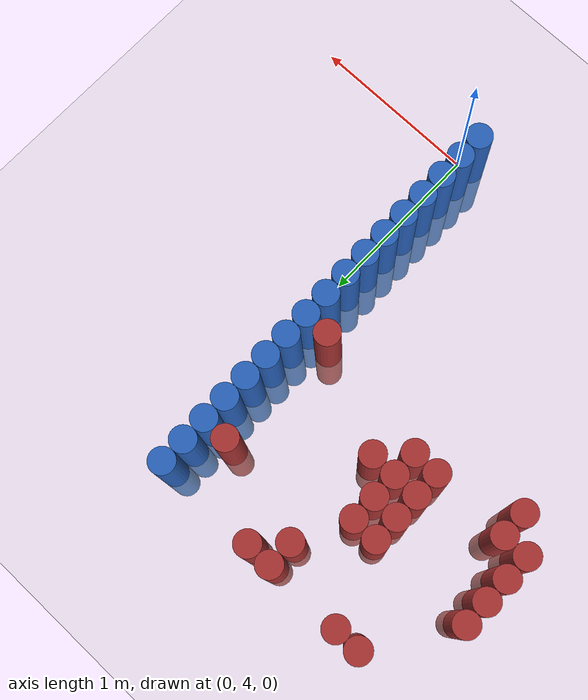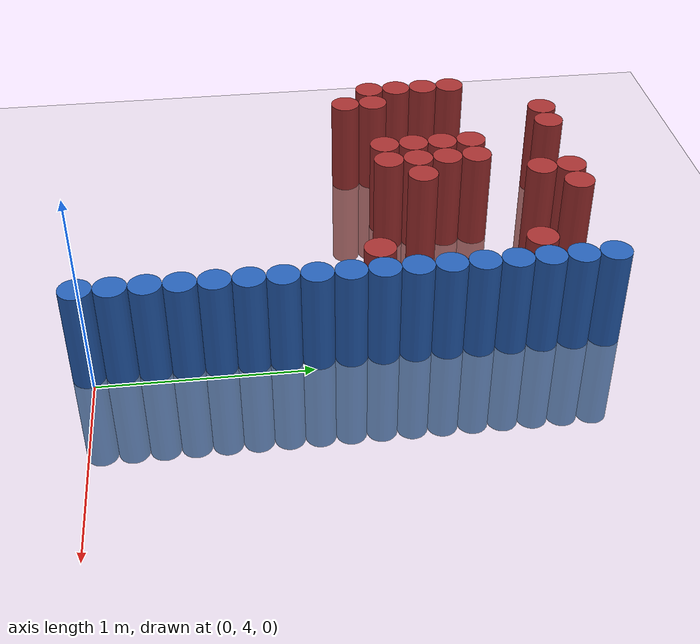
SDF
<sdf version="1.6">
 <world name="default">
  <model name="ground_plane">
   <static>1</static>
   <link name="link">
    <collision name="collision">
     <geometry><plane><normal>0 0 1</normal><size>100 100</size></plane></geometry>
     <surface><friction><ode><mu>100</mu><mu2>50</mu2></ode></friction></surface>
    </collision>
    <visual name="visual">
     <cast_shadows>0</cast_shadows>
     <geometry><plane><normal>0 0 1</normal><size>100 100</size></plane></geometry>
     <material>
      <script><uri>file://media/materials/scripts/gazebo.material</uri><name>Gazebo/Grey</name></script>
     </material>
    </visual>
   </link>
  </model>
  <model name="unit_cylinder_80">
   <static>1</static>
   <pose>-0.075000 3.975000 0.000000 0.000000 0.000000 0.000000</pose>
   <link name="link">
    <inertial>
     <mass>1</mass>
     <inertia><ixx>0.145833</ixx><ixy>0</ixy><ixz>0</ixz><iyy>0.145833</iyy><iyz>0</iyz><izz>0.125</izz></inertia>
    </inertial>
    <collision name="collision">
     <geometry><cylinder><radius>0.075000</radius><length>1</length></cylinder></geometry>
    </collision>
    <visual name="visual">
     <geometry><cylinder><radius>0.075000</radius><length>1</length></cylinder></geometry>
     <material>
      <ambient>0.152000 0.379000 0.720000 1</ambient>
      <diffuse>0.152000 0.379000 0.720000 1</diffuse>
     </material>
     <material>
      <script><name>Gazebo/Grey</name><uri>file://media/materials/scripts/gazebo.material</uri></script>
     </material>
    </visual>
    <sensor name="sensor_contact" type="contact"><contact><collision>collision</collision></contact></sensor>
   </link>
   <plugin filename="gz-sim-touchplugin-system" name="gz::sim::systems::TouchPlugin">
    <target>robot</target>
    <namespace>robot</namespace>
    <time>0.001</time>
    <enabled>true</enabled>
   </plugin>
  </model>
  <model name="unit_cylinder_82">
   <static>1</static>
   <pose>-0.075000 4.125000 0.000000 0.000000 0.000000 0.000000</pose>
   <link name="link">
    <inertial>
     <mass>1</mass>
     <inertia><ixx>0.145833</ixx><ixy>0</ixy><ixz>0</ixz><iyy>0.145833</iyy><iyz>0</iyz><izz>0.125</izz></inertia>
    </inertial>
    <collision name="collision">
     <geometry><cylinder><radius>0.075000</radius><length>1</length></cylinder></geometry>
    </collision>
    <visual name="visual">
     <geometry><cylinder><radius>0.075000</radius><length>1</length></cylinder></geometry>
     <material>
      <ambient>0.152000 0.379000 0.720000 1</ambient>
      <diffuse>0.152000 0.379000 0.720000 1</diffuse>
     </material>
     <material>
      <script><name>Gazebo/Grey</name><uri>file://media/materials/scripts/gazebo.material</uri></script>
     </material>
    </visual>
    <sensor name="sensor_contact" type="contact"><contact><collision>collision</collision></contact></sensor>
   </link>
   <plugin filename="gz-sim-touchplugin-system" name="gz::sim::systems::TouchPlugin">
    <target>robot</target>
    <namespace>robot</namespace>
    <time>0.001</time>
    <enabled>true</enabled>
   </plugin>
  </model>
  <model name="unit_cylinder_84">
   <static>1</static>
   <pose>-0.075000 4.275000 0.000000 0.000000 0.000000 0.000000</pose>
   <link name="link">
    <inertial>
     <mass>1</mass>
     <inertia><ixx>0.145833</ixx><ixy>0</ixy><ixz>0</ixz><iyy>0.145833</iyy><iyz>0</iyz><izz>0.125</izz></inertia>
    </inertial>
    <collision name="collision">
     <geometry><cylinder><radius>0.075000</radius><length>1</length></cylinder></geometry>
    </collision>
    <visual name="visual">
     <geometry><cylinder><radius>0.075000</radius><length>1</length></cylinder></geometry>
     <material>
      <ambient>0.152000 0.379000 0.720000 1</ambient>
      <diffuse>0.152000 0.379000 0.720000 1</diffuse>
     </material>
     <material>
      <script><name>Gazebo/Grey</name><uri>file://media/materials/scripts/gazebo.material</uri></script>
     </material>
    </visual>
    <sensor name="sensor_contact" type="contact"><contact><collision>collision</collision></contact></sensor>
   </link>
   <plugin filename="gz-sim-touchplugin-system" name="gz::sim::systems::TouchPlugin">
    <target>robot</target>
    <namespace>robot</namespace>
    <time>0.001</time>
    <enabled>true</enabled>
   </plugin>
  </model>
  <model name="unit_cylinder_86">
   <static>1</static>
   <pose>-0.075000 4.425000 0.000000 0.000000 0.000000 0.000000</pose>
   <link name="link">
    <inertial>
     <mass>1</mass>
     <inertia><ixx>0.145833</ixx><ixy>0</ixy><ixz>0</ixz><iyy>0.145833</iyy><iyz>0</iyz><izz>0.125</izz></inertia>
    </inertial>
    <collision name="collision">
     <geometry><cylinder><radius>0.075000</radius><length>1</length></cylinder></geometry>
    </collision>
    <visual name="visual">
     <geometry><cylinder><radius>0.075000</radius><length>1</length></cylinder></geometry>
     <material>
      <ambient>0.152000 0.379000 0.720000 1</ambient>
      <diffuse>0.152000 0.379000 0.720000 1</diffuse>
     </material>
     <material>
      <script><name>Gazebo/Grey</name><uri>file://media/materials/scripts/gazebo.material</uri></script>
     </material>
    </visual>
    <sensor name="sensor_contact" type="contact"><contact><collision>collision</collision></contact></sensor>
   </link>
   <plugin filename="gz-sim-touchplugin-system" name="gz::sim::systems::TouchPlugin">
    <target>robot</target>
    <namespace>robot</namespace>
    <time>0.001</time>
    <enabled>true</enabled>
   </plugin>
  </model>
  <model name="unit_cylinder_88">
   <static>1</static>
   <pose>-0.075000 4.575000 0.000000 0.000000 0.000000 0.000000</pose>
   <link name="link">
    <inertial>
     <mass>1</mass>
     <inertia><ixx>0.145833</ixx><ixy>0</ixy><ixz>0</ixz><iyy>0.145833</iyy><iyz>0</iyz><izz>0.125</izz></inertia>
    </inertial>
    <collision name="collision">
     <geometry><cylinder><radius>0.075000</radius><length>1</length></cylinder></geometry>
    </collision>
    <visual name="visual">
     <geometry><cylinder><radius>0.075000</radius><length>1</length></cylinder></geometry>
     <material>
      <ambient>0.152000 0.379000 0.720000 1</ambient>
      <diffuse>0.152000 0.379000 0.720000 1</diffuse>
     </material>
     <material>
      <script><name>Gazebo/Grey</name><uri>file://media/materials/scripts/gazebo.material</uri></script>
     </material>
    </visual>
    <sensor name="sensor_contact" type="contact"><contact><collision>collision</collision></contact></sensor>
   </link>
   <plugin filename="gz-sim-touchplugin-system" name="gz::sim::systems::TouchPlugin">
    <target>robot</target>
    <namespace>robot</namespace>
    <time>0.001</time>
    <enabled>true</enabled>
   </plugin>
  </model>
  <model name="unit_cylinder_90">
   <static>1</static>
   <pose>-0.075000 4.725000 0.000000 0.000000 0.000000 0.000000</pose>
   <link name="link">
    <inertial>
     <mass>1</mass>
     <inertia><ixx>0.145833</ixx><ixy>0</ixy><ixz>0</ixz><iyy>0.145833</iyy><iyz>0</iyz><izz>0.125</izz></inertia>
    </inertial>
    <collision name="collision">
     <geometry><cylinder><radius>0.075000</radius><length>1</length></cylinder></geometry>
    </collision>
    <visual name="visual">
     <geometry><cylinder><radius>0.075000</radius><length>1</length></cylinder></geometry>
     <material>
      <ambient>0.152000 0.379000 0.720000 1</ambient>
      <diffuse>0.152000 0.379000 0.720000 1</diffuse>
     </material>
     <material>
      <script><name>Gazebo/Grey</name><uri>file://media/materials/scripts/gazebo.material</uri></script>
     </material>
    </visual>
    <sensor name="sensor_contact" type="contact"><contact><collision>collision</collision></contact></sensor>
   </link>
   <plugin filename="gz-sim-touchplugin-system" name="gz::sim::systems::TouchPlugin">
    <target>robot</target>
    <namespace>robot</namespace>
    <time>0.001</time>
    <enabled>true</enabled>
   </plugin>
  </model>
  <model name="unit_cylinder_92">
   <static>1</static>
   <pose>-0.075000 4.875000 0.000000 0.000000 0.000000 0.000000</pose>
   <link name="link">
    <inertial>
     <mass>1</mass>
     <inertia><ixx>0.145833</ixx><ixy>0</ixy><ixz>0</ixz><iyy>0.145833</iyy><iyz>0</iyz><izz>0.125</izz></inertia>
    </inertial>
    <collision name="collision">
     <geometry><cylinder><radius>0.075000</radius><length>1</length></cylinder></geometry>
    </collision>
    <visual name="visual">
     <geometry><cylinder><radius>0.075000</radius><length>1</length></cylinder></geometry>
     <material>
      <ambient>0.152000 0.379000 0.720000 1</ambient>
      <diffuse>0.152000 0.379000 0.720000 1</diffuse>
     </material>
     <material>
      <script><name>Gazebo/Grey</name><uri>file://media/materials/scripts/gazebo.material</uri></script>
     </material>
    </visual>
    <sensor name="sensor_contact" type="contact"><contact><collision>collision</collision></contact></sensor>
   </link>
   <plugin filename="gz-sim-touchplugin-system" name="gz::sim::systems::TouchPlugin">
    <target>robot</target>
    <namespace>robot</namespace>
    <time>0.001</time>
    <enabled>true</enabled>
   </plugin>
  </model>
  <model name="unit_cylinder_94">
   <static>1</static>
   <pose>-0.075000 5.025000 0.000000 0.000000 0.000000 0.000000</pose>
   <link name="link">
    <inertial>
     <mass>1</mass>
     <inertia><ixx>0.145833</ixx><ixy>0</ixy><ixz>0</ixz><iyy>0.145833</iyy><iyz>0</iyz><izz>0.125</izz></inertia>
    </inertial>
    <collision name="collision">
     <geometry><cylinder><radius>0.075000</radius><length>1</length></cylinder></geometry>
    </collision>
    <visual name="visual">
     <geometry><cylinder><radius>0.075000</radius><length>1</length></cylinder></geometry>
     <material>
      <ambient>0.152000 0.379000 0.720000 1</ambient>
      <diffuse>0.152000 0.379000 0.720000 1</diffuse>
     </material>
     <material>
      <script><name>Gazebo/Grey</name><uri>file://media/materials/scripts/gazebo.material</uri></script>
     </material>
    </visual>
    <sensor name="sensor_contact" type="contact"><contact><collision>collision</collision></contact></sensor>
   </link>
   <plugin filename="gz-sim-touchplugin-system" name="gz::sim::systems::TouchPlugin">
    <target>robot</target>
    <namespace>robot</namespace>
    <time>0.001</time>
    <enabled>true</enabled>
   </plugin>
  </model>
  <model name="unit_cylinder_200">
   <static>1</static>
   <pose>-1.725000 5.475000 0.000000 0.000000 0.000000 0.000000</pose>
   <link name="link">
    <inertial>
     <mass>1</mass>
     <inertia><ixx>0.145833</ixx><ixy>0</ixy><ixz>0</ixz><iyy>0.145833</iyy><iyz>0</iyz><izz>0.125</izz></inertia>
    </inertial>
    <collision name="collision">
     <geometry><cylinder><radius>0.075000</radius><length>1</length></cylinder></geometry>
    </collision>
    <visual name="visual">
     <geometry><cylinder><radius>0.075000</radius><length>1</length></cylinder></geometry>
     <material>
      <ambient>0.648000 0.192000 0.192000 1</ambient>
      <diffuse>0.648000 0.192000 0.192000 1</diffuse>
     </material>
     <material>
      <script><name>Gazebo/Grey</name><uri>file://media/materials/scripts/gazebo.material</uri></script>
     </material>
    </visual>
    <sensor name="sensor_contact" type="contact"><contact><collision>collision</collision></contact></sensor>
   </link>
   <plugin filename="gz-sim-touchplugin-system" name="gz::sim::systems::TouchPlugin">
    <target>robot</target>
    <namespace>robot</namespace>
    <time>0.001</time>
    <enabled>true</enabled>
   </plugin>
  </model>
  <model name="unit_cylinder_201">
   <static>1</static>
   <pose>-1.725000 5.625000 0.000000 0.000000 0.000000 0.000000</pose>
   <link name="link">
    <inertial>
     <mass>1</mass>
     <inertia><ixx>0.145833</ixx><ixy>0</ixy><ixz>0</ixz><iyy>0.145833</iyy><iyz>0</iyz><izz>0.125</izz></inertia>
    </inertial>
    <collision name="collision">
     <geometry><cylinder><radius>0.075000</radius><length>1</length></cylinder></geometry>
    </collision>
    <visual name="visual">
     <geometry><cylinder><radius>0.075000</radius><length>1</length></cylinder></geometry>
     <material>
      <ambient>0.648000 0.192000 0.192000 1</ambient>
      <diffuse>0.648000 0.192000 0.192000 1</diffuse>
     </material>
     <material>
      <script><name>Gazebo/Grey</name><uri>file://media/materials/scripts/gazebo.material</uri></script>
     </material>
    </visual>
    <sensor name="sensor_contact" type="contact"><contact><collision>collision</collision></contact></sensor>
   </link>
   <plugin filename="gz-sim-touchplugin-system" name="gz::sim::systems::TouchPlugin">
    <target>robot</target>
    <namespace>robot</namespace>
    <time>0.001</time>
    <enabled>true</enabled>
   </plugin>
  </model>
  <model name="unit_cylinder_202">
   <static>1</static>
   <pose>-1.725000 5.775000 0.000000 0.000000 0.000000 0.000000</pose>
   <link name="link">
    <inertial>
     <mass>1</mass>
     <inertia><ixx>0.145833</ixx><ixy>0</ixy><ixz>0</ixz><iyy>0.145833</iyy><iyz>0</iyz><izz>0.125</izz></inertia>
    </inertial>
    <collision name="collision">
     <geometry><cylinder><radius>0.075000</radius><length>1</length></cylinder></geometry>
    </collision>
    <visual name="visual">
     <geometry><cylinder><radius>0.075000</radius><length>1</length></cylinder></geometry>
     <material>
      <ambient>0.648000 0.192000 0.192000 1</ambient>
      <diffuse>0.648000 0.192000 0.192000 1</diffuse>
     </material>
     <material>
      <script><name>Gazebo/Grey</name><uri>file://media/materials/scripts/gazebo.material</uri></script>
     </material>
    </visual>
    <sensor name="sensor_contact" type="contact"><contact><collision>collision</collision></contact></sensor>
   </link>
   <plugin filename="gz-sim-touchplugin-system" name="gz::sim::systems::TouchPlugin">
    <target>robot</target>
    <namespace>robot</namespace>
    <time>0.001</time>
    <enabled>true</enabled>
   </plugin>
  </model>
  <model name="unit_cylinder_203">
   <static>1</static>
   <pose>-1.725000 5.925000 0.000000 0.000000 0.000000 0.000000</pose>
   <link name="link">
    <inertial>
     <mass>1</mass>
     <inertia><ixx>0.145833</ixx><ixy>0</ixy><ixz>0</ixz><iyy>0.145833</iyy><iyz>0</iyz><izz>0.125</izz></inertia>
    </inertial>
    <collision name="collision">
     <geometry><cylinder><radius>0.075000</radius><length>1</length></cylinder></geometry>
    </collision>
    <visual name="visual">
     <geometry><cylinder><radius>0.075000</radius><length>1</length></cylinder></geometry>
     <material>
      <ambient>0.648000 0.192000 0.192000 1</ambient>
      <diffuse>0.648000 0.192000 0.192000 1</diffuse>
     </material>
     <material>
      <script><name>Gazebo/Grey</name><uri>file://media/materials/scripts/gazebo.material</uri></script>
     </material>
    </visual>
    <sensor name="sensor_contact" type="contact"><contact><collision>collision</collision></contact></sensor>
   </link>
   <plugin filename="gz-sim-touchplugin-system" name="gz::sim::systems::TouchPlugin">
    <target>robot</target>
    <namespace>robot</namespace>
    <time>0.001</time>
    <enabled>true</enabled>
   </plugin>
  </model>
  <model name="unit_cylinder_207">
   <static>1</static>
   <pose>-1.575000 5.325000 0.000000 0.000000 0.000000 0.000000</pose>
   <link name="link">
    <inertial>
     <mass>1</mass>
     <inertia><ixx>0.145833</ixx><ixy>0</ixy><ixz>0</ixz><iyy>0.145833</iyy><iyz>0</iyz><izz>0.125</izz></inertia>
    </inertial>
    <collision name="collision">
     <geometry><cylinder><radius>0.075000</radius><length>1</length></cylinder></geometry>
    </collision>
    <visual name="visual">
     <geometry><cylinder><radius>0.075000</radius><length>1</length></cylinder></geometry>
     <material>
      <ambient>0.648000 0.192000 0.192000 1</ambient>
      <diffuse>0.648000 0.192000 0.192000 1</diffuse>
     </material>
     <material>
      <script><name>Gazebo/Grey</name><uri>file://media/materials/scripts/gazebo.material</uri></script>
     </material>
    </visual>
    <sensor name="sensor_contact" type="contact"><contact><collision>collision</collision></contact></sensor>
   </link>
   <plugin filename="gz-sim-touchplugin-system" name="gz::sim::systems::TouchPlugin">
    <target>robot</target>
    <namespace>robot</namespace>
    <time>0.001</time>
    <enabled>true</enabled>
   </plugin>
  </model>
  <model name="unit_cylinder_208">
   <static>1</static>
   <pose>-1.575000 5.475000 0.000000 0.000000 0.000000 0.000000</pose>
   <link name="link">
    <inertial>
     <mass>1</mass>
     <inertia><ixx>0.145833</ixx><ixy>0</ixy><ixz>0</ixz><iyy>0.145833</iyy><iyz>0</iyz><izz>0.125</izz></inertia>
    </inertial>
    <collision name="collision">
     <geometry><cylinder><radius>0.075000</radius><length>1</length></cylinder></geometry>
    </collision>
    <visual name="visual">
     <geometry><cylinder><radius>0.075000</radius><length>1</length></cylinder></geometry>
     <material>
      <ambient>0.648000 0.192000 0.192000 1</ambient>
      <diffuse>0.648000 0.192000 0.192000 1</diffuse>
     </material>
     <material>
      <script><name>Gazebo/Grey</name><uri>file://media/materials/scripts/gazebo.material</uri></script>
     </material>
    </visual>
    <sensor name="sensor_contact" type="contact"><contact><collision>collision</collision></contact></sensor>
   </link>
   <plugin filename="gz-sim-touchplugin-system" name="gz::sim::systems::TouchPlugin">
    <target>robot</target>
    <namespace>robot</namespace>
    <time>0.001</time>
    <enabled>true</enabled>
   </plugin>
  </model>
  <model name="unit_cylinder_215">
   <static>1</static>
   <pose>-1.425000 6.375000 0.000000 0.000000 0.000000 0.000000</pose>
   <link name="link">
    <inertial>
     <mass>1</mass>
     <inertia><ixx>0.145833</ixx><ixy>0</ixy><ixz>0</ixz><iyy>0.145833</iyy><iyz>0</iyz><izz>0.125</izz></inertia>
    </inertial>
    <collision name="collision">
     <geometry><cylinder><radius>0.075000</radius><length>1</length></cylinder></geometry>
    </collision>
    <visual name="visual">
     <geometry><cylinder><radius>0.075000</radius><length>1</length></cylinder></geometry>
     <material>
      <ambient>0.648000 0.192000 0.192000 1</ambient>
      <diffuse>0.648000 0.192000 0.192000 1</diffuse>
     </material>
     <material>
      <script><name>Gazebo/Grey</name><uri>file://media/materials/scripts/gazebo.material</uri></script>
     </material>
    </visual>
    <sensor name="sensor_contact" type="contact"><contact><collision>collision</collision></contact></sensor>
   </link>
   <plugin filename="gz-sim-touchplugin-system" name="gz::sim::systems::TouchPlugin">
    <target>robot</target>
    <namespace>robot</namespace>
    <time>0.001</time>
    <enabled>true</enabled>
   </plugin>
  </model>
  <model name="unit_cylinder_221">
   <static>1</static>
   <pose>-1.275000 6.375000 0.000000 0.000000 0.000000 0.000000</pose>
   <link name="link">
    <inertial>
     <mass>1</mass>
     <inertia><ixx>0.145833</ixx><ixy>0</ixy><ixz>0</ixz><iyy>0.145833</iyy><iyz>0</iyz><izz>0.125</izz></inertia>
    </inertial>
    <collision name="collision">
     <geometry><cylinder><radius>0.075000</radius><length>1</length></cylinder></geometry>
    </collision>
    <visual name="visual">
     <geometry><cylinder><radius>0.075000</radius><length>1</length></cylinder></geometry>
     <material>
      <ambient>0.648000 0.192000 0.192000 1</ambient>
      <diffuse>0.648000 0.192000 0.192000 1</diffuse>
     </material>
     <material>
      <script><name>Gazebo/Grey</name><uri>file://media/materials/scripts/gazebo.material</uri></script>
     </material>
    </visual>
    <sensor name="sensor_contact" type="contact"><contact><collision>collision</collision></contact></sensor>
   </link>
   <plugin filename="gz-sim-touchplugin-system" name="gz::sim::systems::TouchPlugin">
    <target>robot</target>
    <namespace>robot</namespace>
    <time>0.001</time>
    <enabled>true</enabled>
   </plugin>
  </model>
  <model name="unit_cylinder_226">
   <static>1</static>
   <pose>-1.125000 5.475000 0.000000 0.000000 0.000000 0.000000</pose>
   <link name="link">
    <inertial>
     <mass>1</mass>
     <inertia><ixx>0.145833</ixx><ixy>0</ixy><ixz>0</ixz><iyy>0.145833</iyy><iyz>0</iyz><izz>0.125</izz></inertia>
    </inertial>
    <collision name="collision">
     <geometry><cylinder><radius>0.075000</radius><length>1</length></cylinder></geometry>
    </collision>
    <visual name="visual">
     <geometry><cylinder><radius>0.075000</radius><length>1</length></cylinder></geometry>
     <material>
      <ambient>0.648000 0.192000 0.192000 1</ambient>
      <diffuse>0.648000 0.192000 0.192000 1</diffuse>
     </material>
     <material>
      <script><name>Gazebo/Grey</name><uri>file://media/materials/scripts/gazebo.material</uri></script>
     </material>
    </visual>
    <sensor name="sensor_contact" type="contact"><contact><collision>collision</collision></contact></sensor>
   </link>
   <plugin filename="gz-sim-touchplugin-system" name="gz::sim::systems::TouchPlugin">
    <target>robot</target>
    <namespace>robot</namespace>
    <time>0.001</time>
    <enabled>true</enabled>
   </plugin>
  </model>
  <model name="unit_cylinder_227">
   <static>1</static>
   <pose>-1.125000 5.625000 0.000000 0.000000 0.000000 0.000000</pose>
   <link name="link">
    <inertial>
     <mass>1</mass>
     <inertia><ixx>0.145833</ixx><ixy>0</ixy><ixz>0</ixz><iyy>0.145833</iyy><iyz>0</iyz><izz>0.125</izz></inertia>
    </inertial>
    <collision name="collision">
     <geometry><cylinder><radius>0.075000</radius><length>1</length></cylinder></geometry>
    </collision>
    <visual name="visual">
     <geometry><cylinder><radius>0.075000</radius><length>1</length></cylinder></geometry>
     <material>
      <ambient>0.648000 0.192000 0.192000 1</ambient>
      <diffuse>0.648000 0.192000 0.192000 1</diffuse>
     </material>
     <material>
      <script><name>Gazebo/Grey</name><uri>file://media/materials/scripts/gazebo.material</uri></script>
     </material>
    </visual>
    <sensor name="sensor_contact" type="contact"><contact><collision>collision</collision></contact></sensor>
   </link>
   <plugin filename="gz-sim-touchplugin-system" name="gz::sim::systems::TouchPlugin">
    <target>robot</target>
    <namespace>robot</namespace>
    <time>0.001</time>
    <enabled>true</enabled>
   </plugin>
  </model>
  <model name="unit_cylinder_228">
   <static>1</static>
   <pose>-1.125000 5.775000 0.000000 0.000000 0.000000 0.000000</pose>
   <link name="link">
    <inertial>
     <mass>1</mass>
     <inertia><ixx>0.145833</ixx><ixy>0</ixy><ixz>0</ixz><iyy>0.145833</iyy><iyz>0</iyz><izz>0.125</izz></inertia>
    </inertial>
    <collision name="collision">
     <geometry><cylinder><radius>0.075000</radius><length>1</length></cylinder></geometry>
    </collision>
    <visual name="visual">
     <geometry><cylinder><radius>0.075000</radius><length>1</length></cylinder></geometry>
     <material>
      <ambient>0.648000 0.192000 0.192000 1</ambient>
      <diffuse>0.648000 0.192000 0.192000 1</diffuse>
     </material>
     <material>
      <script><name>Gazebo/Grey</name><uri>file://media/materials/scripts/gazebo.material</uri></script>
     </material>
    </visual>
    <sensor name="sensor_contact" type="contact"><contact><collision>collision</collision></contact></sensor>
   </link>
   <plugin filename="gz-sim-touchplugin-system" name="gz::sim::systems::TouchPlugin">
    <target>robot</target>
    <namespace>robot</namespace>
    <time>0.001</time>
    <enabled>true</enabled>
   </plugin>
  </model>
  <model name="unit_cylinder_229">
   <static>1</static>
   <pose>-1.125000 5.925000 0.000000 0.000000 0.000000 0.000000</pose>
   <link name="link">
    <inertial>
     <mass>1</mass>
     <inertia><ixx>0.145833</ixx><ixy>0</ixy><ixz>0</ixz><iyy>0.145833</iyy><iyz>0</iyz><izz>0.125</izz></inertia>
    </inertial>
    <collision name="collision">
     <geometry><cylinder><radius>0.075000</radius><length>1</length></cylinder></geometry>
    </collision>
    <visual name="visual">
     <geometry><cylinder><radius>0.075000</radius><length>1</length></cylinder></geometry>
     <material>
      <ambient>0.648000 0.192000 0.192000 1</ambient>
      <diffuse>0.648000 0.192000 0.192000 1</diffuse>
     </material>
     <material>
      <script><name>Gazebo/Grey</name><uri>file://media/materials/scripts/gazebo.material</uri></script>
     </material>
    </visual>
    <sensor name="sensor_contact" type="contact"><contact><collision>collision</collision></contact></sensor>
   </link>
   <plugin filename="gz-sim-touchplugin-system" name="gz::sim::systems::TouchPlugin">
    <target>robot</target>
    <namespace>robot</namespace>
    <time>0.001</time>
    <enabled>true</enabled>
   </plugin>
  </model>
  <model name="unit_cylinder_232">
   <static>1</static>
   <pose>-0.975000 5.475000 0.000000 0.000000 0.000000 0.000000</pose>
   <link name="link">
    <inertial>
     <mass>1</mass>
     <inertia><ixx>0.145833</ixx><ixy>0</ixy><ixz>0</ixz><iyy>0.145833</iyy><iyz>0</iyz><izz>0.125</izz></inertia>
    </inertial>
    <collision name="collision">
     <geometry><cylinder><radius>0.075000</radius><length>1</length></cylinder></geometry>
    </collision>
    <visual name="visual">
     <geometry><cylinder><radius>0.075000</radius><length>1</length></cylinder></geometry>
     <material>
      <ambient>0.648000 0.192000 0.192000 1</ambient>
      <diffuse>0.648000 0.192000 0.192000 1</diffuse>
     </material>
     <material>
      <script><name>Gazebo/Grey</name><uri>file://media/materials/scripts/gazebo.material</uri></script>
     </material>
    </visual>
    <sensor name="sensor_contact" type="contact"><contact><collision>collision</collision></contact></sensor>
   </link>
   <plugin filename="gz-sim-touchplugin-system" name="gz::sim::systems::TouchPlugin">
    <target>robot</target>
    <namespace>robot</namespace>
    <time>0.001</time>
    <enabled>true</enabled>
   </plugin>
  </model>
  <model name="unit_cylinder_233">
   <static>1</static>
   <pose>-0.975000 5.625000 0.000000 0.000000 0.000000 0.000000</pose>
   <link name="link">
    <inertial>
     <mass>1</mass>
     <inertia><ixx>0.145833</ixx><ixy>0</ixy><ixz>0</ixz><iyy>0.145833</iyy><iyz>0</iyz><izz>0.125</izz></inertia>
    </inertial>
    <collision name="collision">
     <geometry><cylinder><radius>0.075000</radius><length>1</length></cylinder></geometry>
    </collision>
    <visual name="visual">
     <geometry><cylinder><radius>0.075000</radius><length>1</length></cylinder></geometry>
     <material>
      <ambient>0.648000 0.192000 0.192000 1</ambient>
      <diffuse>0.648000 0.192000 0.192000 1</diffuse>
     </material>
     <material>
      <script><name>Gazebo/Grey</name><uri>file://media/materials/scripts/gazebo.material</uri></script>
     </material>
    </visual>
    <sensor name="sensor_contact" type="contact"><contact><collision>collision</collision></contact></sensor>
   </link>
   <plugin filename="gz-sim-touchplugin-system" name="gz::sim::systems::TouchPlugin">
    <target>robot</target>
    <namespace>robot</namespace>
    <time>0.001</time>
    <enabled>true</enabled>
   </plugin>
  </model>
  <model name="unit_cylinder_234">
   <static>1</static>
   <pose>-0.975000 5.775000 0.000000 0.000000 0.000000 0.000000</pose>
   <link name="link">
    <inertial>
     <mass>1</mass>
     <inertia><ixx>0.145833</ixx><ixy>0</ixy><ixz>0</ixz><iyy>0.145833</iyy><iyz>0</iyz><izz>0.125</izz></inertia>
    </inertial>
    <collision name="collision">
     <geometry><cylinder><radius>0.075000</radius><length>1</length></cylinder></geometry>
    </collision>
    <visual name="visual">
     <geometry><cylinder><radius>0.075000</radius><length>1</length></cylinder></geometry>
     <material>
      <ambient>0.648000 0.192000 0.192000 1</ambient>
      <diffuse>0.648000 0.192000 0.192000 1</diffuse>
     </material>
     <material>
      <script><name>Gazebo/Grey</name><uri>file://media/materials/scripts/gazebo.material</uri></script>
     </material>
    </visual>
    <sensor name="sensor_contact" type="contact"><contact><collision>collision</collision></contact></sensor>
   </link>
   <plugin filename="gz-sim-touchplugin-system" name="gz::sim::systems::TouchPlugin">
    <target>robot</target>
    <namespace>robot</namespace>
    <time>0.001</time>
    <enabled>true</enabled>
   </plugin>
  </model>
  <model name="unit_cylinder_235">
   <static>1</static>
   <pose>-0.975000 5.925000 0.000000 0.000000 0.000000 0.000000</pose>
   <link name="link">
    <inertial>
     <mass>1</mass>
     <inertia><ixx>0.145833</ixx><ixy>0</ixy><ixz>0</ixz><iyy>0.145833</iyy><iyz>0</iyz><izz>0.125</izz></inertia>
    </inertial>
    <collision name="collision">
     <geometry><cylinder><radius>0.075000</radius><length>1</length></cylinder></geometry>
    </collision>
    <visual name="visual">
     <geometry><cylinder><radius>0.075000</radius><length>1</length></cylinder></geometry>
     <material>
      <ambient>0.648000 0.192000 0.192000 1</ambient>
      <diffuse>0.648000 0.192000 0.192000 1</diffuse>
     </material>
     <material>
      <script><name>Gazebo/Grey</name><uri>file://media/materials/scripts/gazebo.material</uri></script>
     </material>
    </visual>
    <sensor name="sensor_contact" type="contact"><contact><collision>collision</collision></contact></sensor>
   </link>
   <plugin filename="gz-sim-touchplugin-system" name="gz::sim::systems::TouchPlugin">
    <target>robot</target>
    <namespace>robot</namespace>
    <time>0.001</time>
    <enabled>true</enabled>
   </plugin>
  </model>
  <model name="unit_cylinder_237">
   <static>1</static>
   <pose>-0.825000 5.625000 0.000000 0.000000 0.000000 0.000000</pose>
   <link name="link">
    <inertial>
     <mass>1</mass>
     <inertia><ixx>0.145833</ixx><ixy>0</ixy><ixz>0</ixz><iyy>0.145833</iyy><iyz>0</iyz><izz>0.125</izz></inertia>
    </inertial>
    <collision name="collision">
     <geometry><cylinder><radius>0.075000</radius><length>1</length></cylinder></geometry>
    </collision>
    <visual name="visual">
     <geometry><cylinder><radius>0.075000</radius><length>1</length></cylinder></geometry>
     <material>
      <ambient>0.648000 0.192000 0.192000 1</ambient>
      <diffuse>0.648000 0.192000 0.192000 1</diffuse>
     </material>
     <material>
      <script><name>Gazebo/Grey</name><uri>file://media/materials/scripts/gazebo.material</uri></script>
     </material>
    </visual>
    <sensor name="sensor_contact" type="contact"><contact><collision>collision</collision></contact></sensor>
   </link>
   <plugin filename="gz-sim-touchplugin-system" name="gz::sim::systems::TouchPlugin">
    <target>robot</target>
    <namespace>robot</namespace>
    <time>0.001</time>
    <enabled>true</enabled>
   </plugin>
  </model>
  <model name="unit_cylinder_238">
   <static>1</static>
   <pose>-0.825000 6.225000 0.000000 0.000000 0.000000 0.000000</pose>
   <link name="link">
    <inertial>
     <mass>1</mass>
     <inertia><ixx>0.145833</ixx><ixy>0</ixy><ixz>0</ixz><iyy>0.145833</iyy><iyz>0</iyz><izz>0.125</izz></inertia>
    </inertial>
    <collision name="collision">
     <geometry><cylinder><radius>0.075000</radius><length>1</length></cylinder></geometry>
    </collision>
    <visual name="visual">
     <geometry><cylinder><radius>0.075000</radius><length>1</length></cylinder></geometry>
     <material>
      <ambient>0.648000 0.192000 0.192000 1</ambient>
      <diffuse>0.648000 0.192000 0.192000 1</diffuse>
     </material>
     <material>
      <script><name>Gazebo/Grey</name><uri>file://media/materials/scripts/gazebo.material</uri></script>
     </material>
    </visual>
    <sensor name="sensor_contact" type="contact"><contact><collision>collision</collision></contact></sensor>
   </link>
   <plugin filename="gz-sim-touchplugin-system" name="gz::sim::systems::TouchPlugin">
    <target>robot</target>
    <namespace>robot</namespace>
    <time>0.001</time>
    <enabled>true</enabled>
   </plugin>
  </model>
  <model name="unit_cylinder_239">
   <static>1</static>
   <pose>-0.825000 6.375000 0.000000 0.000000 0.000000 0.000000</pose>
   <link name="link">
    <inertial>
     <mass>1</mass>
     <inertia><ixx>0.145833</ixx><ixy>0</ixy><ixz>0</ixz><iyy>0.145833</iyy><iyz>0</iyz><izz>0.125</izz></inertia>
    </inertial>
    <collision name="collision">
     <geometry><cylinder><radius>0.075000</radius><length>1</length></cylinder></geometry>
    </collision>
    <visual name="visual">
     <geometry><cylinder><radius>0.075000</radius><length>1</length></cylinder></geometry>
     <material>
      <ambient>0.648000 0.192000 0.192000 1</ambient>
      <diffuse>0.648000 0.192000 0.192000 1</diffuse>
     </material>
     <material>
      <script><name>Gazebo/Grey</name><uri>file://media/materials/scripts/gazebo.material</uri></script>
     </material>
    </visual>
    <sensor name="sensor_contact" type="contact"><contact><collision>collision</collision></contact></sensor>
   </link>
   <plugin filename="gz-sim-touchplugin-system" name="gz::sim::systems::TouchPlugin">
    <target>robot</target>
    <namespace>robot</namespace>
    <time>0.001</time>
    <enabled>true</enabled>
   </plugin>
  </model>
  <model name="unit_cylinder_245">
   <static>1</static>
   <pose>-0.675000 6.375000 0.000000 0.000000 0.000000 0.000000</pose>
   <link name="link">
    <inertial>
     <mass>1</mass>
     <inertia><ixx>0.145833</ixx><ixy>0</ixy><ixz>0</ixz><iyy>0.145833</iyy><iyz>0</iyz><izz>0.125</izz></inertia>
    </inertial>
    <collision name="collision">
     <geometry><cylinder><radius>0.075000</radius><length>1</length></cylinder></geometry>
    </collision>
    <visual name="visual">
     <geometry><cylinder><radius>0.075000</radius><length>1</length></cylinder></geometry>
     <material>
      <ambient>0.648000 0.192000 0.192000 1</ambient>
      <diffuse>0.648000 0.192000 0.192000 1</diffuse>
     </material>
     <material>
      <script><name>Gazebo/Grey</name><uri>file://media/materials/scripts/gazebo.material</uri></script>
     </material>
    </visual>
    <sensor name="sensor_contact" type="contact"><contact><collision>collision</collision></contact></sensor>
   </link>
   <plugin filename="gz-sim-touchplugin-system" name="gz::sim::systems::TouchPlugin">
    <target>robot</target>
    <namespace>robot</namespace>
    <time>0.001</time>
    <enabled>true</enabled>
   </plugin>
  </model>
  <model name="unit_cylinder_270">
   <static>1</static>
   <pose>-0.225000 5.325000 0.000000 0.000000 0.000000 0.000000</pose>
   <link name="link">
    <inertial>
     <mass>1</mass>
     <inertia><ixx>0.145833</ixx><ixy>0</ixy><ixz>0</ixz><iyy>0.145833</iyy><iyz>0</iyz><izz>0.125</izz></inertia>
    </inertial>
    <collision name="collision">
     <geometry><cylinder><radius>0.075000</radius><length>1</length></cylinder></geometry>
    </collision>
    <visual name="visual">
     <geometry><cylinder><radius>0.075000</radius><length>1</length></cylinder></geometry>
     <material>
      <ambient>0.648000 0.192000 0.192000 1</ambient>
      <diffuse>0.648000 0.192000 0.192000 1</diffuse>
     </material>
     <material>
      <script><name>Gazebo/Grey</name><uri>file://media/materials/scripts/gazebo.material</uri></script>
     </material>
    </visual>
    <sensor name="sensor_contact" type="contact"><contact><collision>collision</collision></contact></sensor>
   </link>
   <plugin filename="gz-sim-touchplugin-system" name="gz::sim::systems::TouchPlugin">
    <target>robot</target>
    <namespace>robot</namespace>
    <time>0.001</time>
    <enabled>true</enabled>
   </plugin>
  </model>
  <model name="unit_cylinder_271">
   <static>1</static>
   <pose>-0.225000 6.075000 0.000000 0.000000 0.000000 0.000000</pose>
   <link name="link">
    <inertial>
     <mass>1</mass>
     <inertia><ixx>0.145833</ixx><ixy>0</ixy><ixz>0</ixz><iyy>0.145833</iyy><iyz>0</iyz><izz>0.125</izz></inertia>
    </inertial>
    <collision name="collision">
     <geometry><cylinder><radius>0.075000</radius><length>1</length></cylinder></geometry>
    </collision>
    <visual name="visual">
     <geometry><cylinder><radius>0.075000</radius><length>1</length></cylinder></geometry>
     <material>
      <ambient>0.648000 0.192000 0.192000 1</ambient>
      <diffuse>0.648000 0.192000 0.192000 1</diffuse>
     </material>
     <material>
      <script><name>Gazebo/Grey</name><uri>file://media/materials/scripts/gazebo.material</uri></script>
     </material>
    </visual>
    <sensor name="sensor_contact" type="contact"><contact><collision>collision</collision></contact></sensor>
   </link>
   <plugin filename="gz-sim-touchplugin-system" name="gz::sim::systems::TouchPlugin">
    <target>robot</target>
    <namespace>robot</namespace>
    <time>0.001</time>
    <enabled>true</enabled>
   </plugin>
  </model>
  <model name="unit_cylinder_284">
   <static>1</static>
   <pose>-0.075000 5.175000 0.000000 0.000000 0.000000 0.000000</pose>
   <link name="link">
    <inertial>
     <mass>1</mass>
     <inertia><ixx>0.145833</ixx><ixy>0</ixy><ixz>0</ixz><iyy>0.145833</iyy><iyz>0</iyz><izz>0.125</izz></inertia>
    </inertial>
    <collision name="collision">
     <geometry><cylinder><radius>0.075000</radius><length>1</length></cylinder></geometry>
    </collision>
    <visual name="visual">
     <geometry><cylinder><radius>0.075000</radius><length>1</length></cylinder></geometry>
     <material>
      <ambient>0.152000 0.379000 0.720000 1</ambient>
      <diffuse>0.152000 0.379000 0.720000 1</diffuse>
     </material>
     <material>
      <script><name>Gazebo/Grey</name><uri>file://media/materials/scripts/gazebo.material</uri></script>
     </material>
    </visual>
    <sensor name="sensor_contact" type="contact"><contact><collision>collision</collision></contact></sensor>
   </link>
   <plugin filename="gz-sim-touchplugin-system" name="gz::sim::systems::TouchPlugin">
    <target>robot</target>
    <namespace>robot</namespace>
    <time>0.001</time>
    <enabled>true</enabled>
   </plugin>
  </model>
  <model name="unit_cylinder_285">
   <static>1</static>
   <pose>-0.075000 5.325000 0.000000 0.000000 0.000000 0.000000</pose>
   <link name="link">
    <inertial>
     <mass>1</mass>
     <inertia><ixx>0.145833</ixx><ixy>0</ixy><ixz>0</ixz><iyy>0.145833</iyy><iyz>0</iyz><izz>0.125</izz></inertia>
    </inertial>
    <collision name="collision">
     <geometry><cylinder><radius>0.075000</radius><length>1</length></cylinder></geometry>
    </collision>
    <visual name="visual">
     <geometry><cylinder><radius>0.075000</radius><length>1</length></cylinder></geometry>
     <material>
      <ambient>0.152000 0.379000 0.720000 1</ambient>
      <diffuse>0.152000 0.379000 0.720000 1</diffuse>
     </material>
     <material>
      <script><name>Gazebo/Grey</name><uri>file://media/materials/scripts/gazebo.material</uri></script>
     </material>
    </visual>
    <sensor name="sensor_contact" type="contact"><contact><collision>collision</collision></contact></sensor>
   </link>
   <plugin filename="gz-sim-touchplugin-system" name="gz::sim::systems::TouchPlugin">
    <target>robot</target>
    <namespace>robot</namespace>
    <time>0.001</time>
    <enabled>true</enabled>
   </plugin>
  </model>
  <model name="unit_cylinder_286">
   <static>1</static>
   <pose>-0.075000 5.475000 0.000000 0.000000 0.000000 0.000000</pose>
   <link name="link">
    <inertial>
     <mass>1</mass>
     <inertia><ixx>0.145833</ixx><ixy>0</ixy><ixz>0</ixz><iyy>0.145833</iyy><iyz>0</iyz><izz>0.125</izz></inertia>
    </inertial>
    <collision name="collision">
     <geometry><cylinder><radius>0.075000</radius><length>1</length></cylinder></geometry>
    </collision>
    <visual name="visual">
     <geometry><cylinder><radius>0.075000</radius><length>1</length></cylinder></geometry>
     <material>
      <ambient>0.152000 0.379000 0.720000 1</ambient>
      <diffuse>0.152000 0.379000 0.720000 1</diffuse>
     </material>
     <material>
      <script><name>Gazebo/Grey</name><uri>file://media/materials/scripts/gazebo.material</uri></script>
     </material>
    </visual>
    <sensor name="sensor_contact" type="contact"><contact><collision>collision</collision></contact></sensor>
   </link>
   <plugin filename="gz-sim-touchplugin-system" name="gz::sim::systems::TouchPlugin">
    <target>robot</target>
    <namespace>robot</namespace>
    <time>0.001</time>
    <enabled>true</enabled>
   </plugin>
  </model>
  <model name="unit_cylinder_287">
   <static>1</static>
   <pose>-0.075000 5.625000 0.000000 0.000000 0.000000 0.000000</pose>
   <link name="link">
    <inertial>
     <mass>1</mass>
     <inertia><ixx>0.145833</ixx><ixy>0</ixy><ixz>0</ixz><iyy>0.145833</iyy><iyz>0</iyz><izz>0.125</izz></inertia>
    </inertial>
    <collision name="collision">
     <geometry><cylinder><radius>0.075000</radius><length>1</length></cylinder></geometry>
    </collision>
    <visual name="visual">
     <geometry><cylinder><radius>0.075000</radius><length>1</length></cylinder></geometry>
     <material>
      <ambient>0.152000 0.379000 0.720000 1</ambient>
      <diffuse>0.152000 0.379000 0.720000 1</diffuse>
     </material>
     <material>
      <script><name>Gazebo/Grey</name><uri>file://media/materials/scripts/gazebo.material</uri></script>
     </material>
    </visual>
    <sensor name="sensor_contact" type="contact"><contact><collision>collision</collision></contact></sensor>
   </link>
   <plugin filename="gz-sim-touchplugin-system" name="gz::sim::systems::TouchPlugin">
    <target>robot</target>
    <namespace>robot</namespace>
    <time>0.001</time>
    <enabled>true</enabled>
   </plugin>
  </model>
  <model name="unit_cylinder_288">
   <static>1</static>
   <pose>-0.075000 5.775000 0.000000 0.000000 0.000000 0.000000</pose>
   <link name="link">
    <inertial>
     <mass>1</mass>
     <inertia><ixx>0.145833</ixx><ixy>0</ixy><ixz>0</ixz><iyy>0.145833</iyy><iyz>0</iyz><izz>0.125</izz></inertia>
    </inertial>
    <collision name="collision">
     <geometry><cylinder><radius>0.075000</radius><length>1</length></cylinder></geometry>
    </collision>
    <visual name="visual">
     <geometry><cylinder><radius>0.075000</radius><length>1</length></cylinder></geometry>
     <material>
      <ambient>0.152000 0.379000 0.720000 1</ambient>
      <diffuse>0.152000 0.379000 0.720000 1</diffuse>
     </material>
     <material>
      <script><name>Gazebo/Grey</name><uri>file://media/materials/scripts/gazebo.material</uri></script>
     </material>
    </visual>
    <sensor name="sensor_contact" type="contact"><contact><collision>collision</collision></contact></sensor>
   </link>
   <plugin filename="gz-sim-touchplugin-system" name="gz::sim::systems::TouchPlugin">
    <target>robot</target>
    <namespace>robot</namespace>
    <time>0.001</time>
    <enabled>true</enabled>
   </plugin>
  </model>
  <model name="unit_cylinder_289">
   <static>1</static>
   <pose>-0.075000 5.925000 0.000000 0.000000 0.000000 0.000000</pose>
   <link name="link">
    <inertial>
     <mass>1</mass>
     <inertia><ixx>0.145833</ixx><ixy>0</ixy><ixz>0</ixz><iyy>0.145833</iyy><iyz>0</iyz><izz>0.125</izz></inertia>
    </inertial>
    <collision name="collision">
     <geometry><cylinder><radius>0.075000</radius><length>1</length></cylinder></geometry>
    </collision>
    <visual name="visual">
     <geometry><cylinder><radius>0.075000</radius><length>1</length></cylinder></geometry>
     <material>
      <ambient>0.152000 0.379000 0.720000 1</ambient>
      <diffuse>0.152000 0.379000 0.720000 1</diffuse>
     </material>
     <material>
      <script><name>Gazebo/Grey</name><uri>file://media/materials/scripts/gazebo.material</uri></script>
     </material>
    </visual>
    <sensor name="sensor_contact" type="contact"><contact><collision>collision</collision></contact></sensor>
   </link>
   <plugin filename="gz-sim-touchplugin-system" name="gz::sim::systems::TouchPlugin">
    <target>robot</target>
    <namespace>robot</namespace>
    <time>0.001</time>
    <enabled>true</enabled>
   </plugin>
  </model>
  <model name="unit_cylinder_290">
   <static>1</static>
   <pose>-0.075000 6.075000 0.000000 0.000000 0.000000 0.000000</pose>
   <link name="link">
    <inertial>
     <mass>1</mass>
     <inertia><ixx>0.145833</ixx><ixy>0</ixy><ixz>0</ixz><iyy>0.145833</iyy><iyz>0</iyz><izz>0.125</izz></inertia>
    </inertial>
    <collision name="collision">
     <geometry><cylinder><radius>0.075000</radius><length>1</length></cylinder></geometry>
    </collision>
    <visual name="visual">
     <geometry><cylinder><radius>0.075000</radius><length>1</length></cylinder></geometry>
     <material>
      <ambient>0.152000 0.379000 0.720000 1</ambient>
      <diffuse>0.152000 0.379000 0.720000 1</diffuse>
     </material>
     <material>
      <script><name>Gazebo/Grey</name><uri>file://media/materials/scripts/gazebo.material</uri></script>
     </material>
    </visual>
    <sensor name="sensor_contact" type="contact"><contact><collision>collision</collision></contact></sensor>
   </link>
   <plugin filename="gz-sim-touchplugin-system" name="gz::sim::systems::TouchPlugin">
    <target>robot</target>
    <namespace>robot</namespace>
    <time>0.001</time>
    <enabled>true</enabled>
   </plugin>
  </model>
  <model name="unit_cylinder_291">
   <static>1</static>
   <pose>-0.075000 6.225000 0.000000 0.000000 0.000000 0.000000</pose>
   <link name="link">
    <inertial>
     <mass>1</mass>
     <inertia><ixx>0.145833</ixx><ixy>0</ixy><ixz>0</ixz><iyy>0.145833</iyy><iyz>0</iyz><izz>0.125</izz></inertia>
    </inertial>
    <collision name="collision">
     <geometry><cylinder><radius>0.075000</radius><length>1</length></cylinder></geometry>
    </collision>
    <visual name="visual">
     <geometry><cylinder><radius>0.075000</radius><length>1</length></cylinder></geometry>
     <material>
      <ambient>0.152000 0.379000 0.720000 1</ambient>
      <diffuse>0.152000 0.379000 0.720000 1</diffuse>
     </material>
     <material>
      <script><name>Gazebo/Grey</name><uri>file://media/materials/scripts/gazebo.material</uri></script>
     </material>
    </visual>
    <sensor name="sensor_contact" type="contact"><contact><collision>collision</collision></contact></sensor>
   </link>
   <plugin filename="gz-sim-touchplugin-system" name="gz::sim::systems::TouchPlugin">
    <target>robot</target>
    <namespace>robot</namespace>
    <time>0.001</time>
    <enabled>true</enabled>
   </plugin>
  </model>
  <model name="unit_cylinder_292">
   <static>1</static>
   <pose>-0.075000 6.375000 0.000000 0.000000 0.000000 0.000000</pose>
   <link name="link">
    <inertial>
     <mass>1</mass>
     <inertia><ixx>0.145833</ixx><ixy>0</ixy><ixz>0</ixz><iyy>0.145833</iyy><iyz>0</iyz><izz>0.125</izz></inertia>
    </inertial>
    <collision name="collision">
     <geometry><cylinder><radius>0.075000</radius><length>1</length></cylinder></geometry>
    </collision>
    <visual name="visual">
     <geometry><cylinder><radius>0.075000</radius><length>1</length></cylinder></geometry>
     <material>
      <ambient>0.152000 0.379000 0.720000 1</ambient>
      <diffuse>0.152000 0.379000 0.720000 1</diffuse>
     </material>
     <material>
      <script><name>Gazebo/Grey</name><uri>file://media/materials/scripts/gazebo.material</uri></script>
     </material>
    </visual>
    <sensor name="sensor_contact" type="contact"><contact><collision>collision</collision></contact></sensor>
   </link>
   <plugin filename="gz-sim-touchplugin-system" name="gz::sim::systems::TouchPlugin">
    <target>robot</target>
    <namespace>robot</namespace>
    <time>0.001</time>
    <enabled>true</enabled>
   </plugin>
  </model>
 </world>
</sdf>
